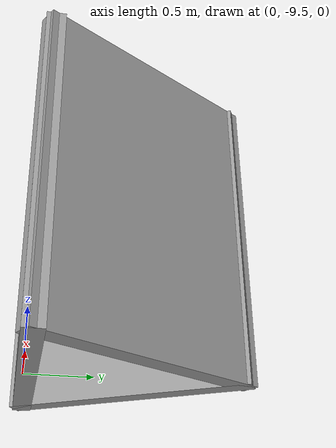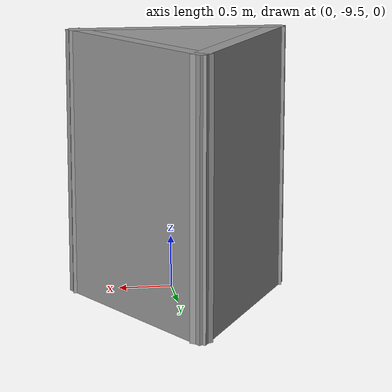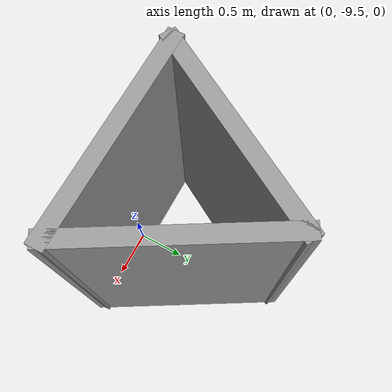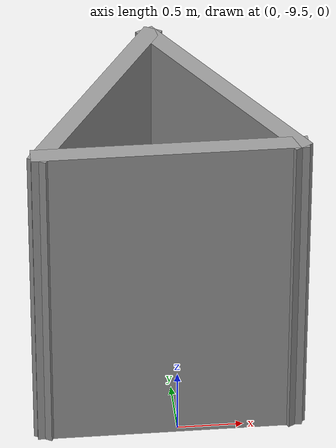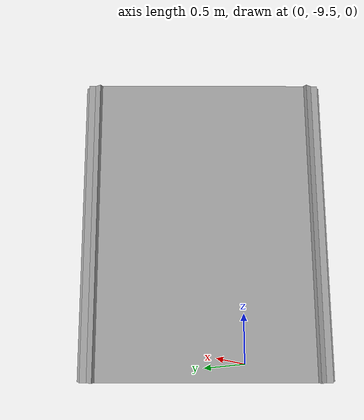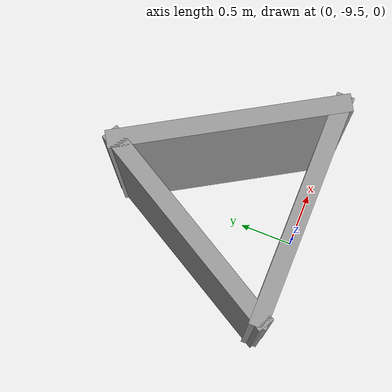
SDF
<?xml version='1.0'?>
<sdf version='1.7'>
  <model name='ob_triangle_2'>
    <pose>-0.057195 -4.78727 0 0 -0 0</pose>
    <link name='Wall_16'>
      <collision name='Wall_16_Collision'>
        <geometry>
          <box>
            <size>2 0.15 2.5</size>
          </box>
        </geometry>
        <pose>0 0 1.25 0 -0 0</pose>
      </collision>
      <visual name='Wall_16_Visual'>
        <pose>0 0 1.25 0 -0 0</pose>
        <geometry>
          <box>
            <size>2 0.15 2.5</size>
          </box>
        </geometry>
        <material>
          <script>
            <uri>file://media/materials/scripts/gazebo.material</uri>
            <name>Gazebo/Grey</name>
          </script>
          <ambient>1 1 1 1</ambient>
        </material>
        <meta>
          <layer>0</layer>
        </meta>
      </visual>
      <pose>-0.4625 -3.88374 0 0 -0 -2.0944</pose>
    </link>
    <link name='Wall_17'>
      <collision name='Wall_17_Collision'>
        <geometry>
          <box>
            <size>2 0.15 2.5</size>
          </box>
        </geometry>
        <pose>0 0 1.25 0 -0 0</pose>
      </collision>
      <visual name='Wall_17_Visual'>
        <pose>0 0 1.25 0 -0 0</pose>
        <geometry>
          <box>
            <size>2 0.15 2.5</size>
          </box>
        </geometry>
        <material>
          <script>
            <uri>file://media/materials/scripts/gazebo.material</uri>
            <name>Gazebo/Grey</name>
          </script>
          <ambient>1 1 1 1</ambient>
        </material>
        <meta>
          <layer>0</layer>
        </meta>
      </visual>
      <pose>0 -4.68482 0 0 -0 0</pose>
    </link>
    <link name='Wall_18'>
      <collision name='Wall_18_Collision'>
        <geometry>
          <box>
            <size>2 0.15 2.5</size>
          </box>
        </geometry>
        <pose>0 0 1.25 0 -0 0</pose>
      </collision>
      <visual name='Wall_18_Visual'>
        <pose>0 0 1.25 0 -0 0</pose>
        <geometry>
          <box>
            <size>2 0.15 2.5</size>
          </box>
        </geometry>
        <material>
          <script>
            <uri>file://media/materials/scripts/gazebo.material</uri>
            <name>Gazebo/Grey</name>
          </script>
          <ambient>1 1 1 1</ambient>
        </material>
        <meta>
          <layer>0</layer>
        </meta>
      </visual>
      <pose>0.4625 -3.88374 0 0 -0 2.0944</pose>
    </link>
    <static>1</static>
  </model>
</sdf>
